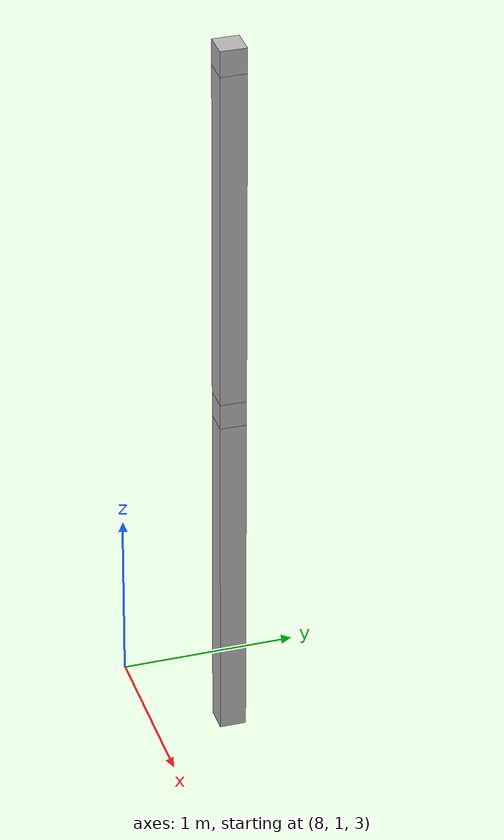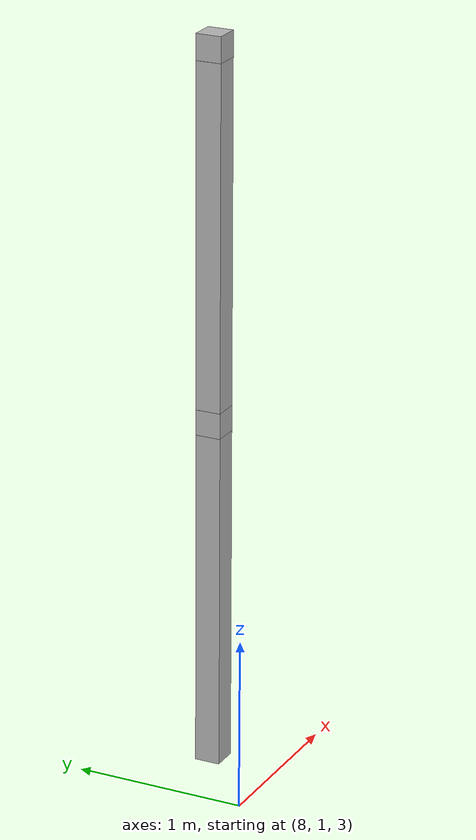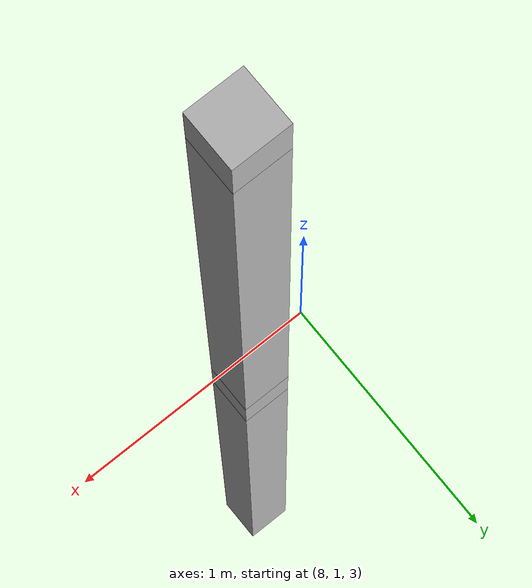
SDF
<sdf version="1.7">
 <world name="default">
  <model name="orthogonal_747_2.000.15_TS">
   <static>1</static>
   <link name="u_link_3_3_7">
    <inertial>
     <mass>1</mass>
     <inertia>
      <ixx>0.166667</ixx>
      <ixy>0</ixy>
      <ixz>0</ixz>
      <iyy>0.166667</iyy>
      <iyz>0</iyz>
      <izz>0.166667</izz>
     </inertia>
    </inertial>
    <pose>15.05 6.45 7.525 0 -0 0</pose>
    <visual name="visual_0">
     <laser_retro>3284</laser_retro>
     <geometry><box><size>0.15 1e-06 0.15</size></box></geometry>
     <material>
      <script><name>Gazebo/Grey</name><uri>file://media/materials/scripts/gazebo.material</uri></script>
      <shader type="pixel"><normal_map>__default__</normal_map></shader>
      <ambient>0.678 0.498 0.659 1</ambient>
      <diffuse>0.7 0.7 0.7 1</diffuse>
      <specular>0.01 0.01 0.01 1</specular>
      <emissive>0 0 0 1</emissive>
     </material>
     <pose>0 -0.075 0 0 -0 0</pose>
     <transparency>1</transparency>
    </visual>
    <visual name="visual_1">
     <laser_retro>3285</laser_retro>
     <geometry><box><size>0.15 1e-06 0.15</size></box></geometry>
     <material>
      <script><name>Gazebo/Grey</name><uri>file://media/materials/scripts/gazebo.material</uri></script>
      <shader type="pixel"><normal_map>__default__</normal_map></shader>
      <ambient>0.447 0.624 0.812 1</ambient>
      <diffuse>0.7 0.7 0.7 1</diffuse>
      <specular>0.01 0.01 0.01 1</specular>
      <emissive>0 0 0 1</emissive>
     </material>
     <pose>0 0.075 0 0 -0 0</pose>
     <transparency>1</transparency>
    </visual>
    <visual name="visual_2">
     <laser_retro>3286</laser_retro>
     <geometry><box><size>0.15 0.15 1e-06</size></box></geometry>
     <material>
      <script><name>Gazebo/Grey</name><uri>file://media/materials/scripts/gazebo.material</uri></script>
      <shader type="pixel"><normal_map>__default__</normal_map></shader>
      <ambient>0.988 0.686 0.243 1</ambient>
      <diffuse>0.7 0.7 0.7 1</diffuse>
      <specular>0.01 0.01 0.01 1</specular>
      <emissive>0 0 0 1</emissive>
     </material>
     <pose>0 0 -0.075 0 -0 0</pose>
     <transparency>1</transparency>
    </visual>
    <visual name="visual_3">
     <laser_retro>3287</laser_retro>
     <geometry><box><size>1e-06 0.15 0.15</size></box></geometry>
     <material>
      <script><name>Gazebo/Grey</name><uri>file://media/materials/scripts/gazebo.material</uri></script>
      <shader type="pixel"><normal_map>__default__</normal_map></shader>
      <ambient>0.988 0.914 0.31 1</ambient>
      <diffuse>0.7 0.7 0.7 1</diffuse>
      <specular>0.01 0.01 0.01 1</specular>
      <emissive>0 0 0 1</emissive>
     </material>
     <pose>0.075 0 0 0 -0 0</pose>
     <transparency>1</transparency>
    </visual>
    <visual name="visual_4">
     <laser_retro>3288</laser_retro>
     <geometry><box><size>0.15 0.15 1e-06</size></box></geometry>
     <material>
      <script><name>Gazebo/Grey</name><uri>file://media/materials/scripts/gazebo.material</uri></script>
      <shader type="pixel"><normal_map>__default__</normal_map></shader>
      <ambient>0.937 0.161 0.161 1</ambient>
      <diffuse>0.7 0.7 0.7 1</diffuse>
      <specular>0.01 0.01 0.01 1</specular>
      <emissive>0 0 0 1</emissive>
     </material>
     <pose>0 0 0.075 0 -0 0</pose>
     <transparency>1</transparency>
    </visual>
    <visual name="visual_5">
     <laser_retro>3289</laser_retro>
     <geometry><box><size>1e-06 0.15 0.15</size></box></geometry>
     <material>
      <script><name>Gazebo/Grey</name><uri>file://media/materials/scripts/gazebo.material</uri></script>
      <shader type="pixel"><normal_map>__default__</normal_map></shader>
      <ambient>0.541 0.886 0.204 1</ambient>
      <diffuse>0.7 0.7 0.7 1</diffuse>
      <specular>0.01 0.01 0.01 1</specular>
      <emissive>0 0 0 1</emissive>
     </material>
     <pose>-0.075 0 0 0 -0 0</pose>
     <transparency>1</transparency>
    </visual>
    <visual name="visual_texture">
     <geometry><box><size>0.149985 0.149985 0.149985</size></box></geometry>
     <material>
      <script>
       <uri>model://BASE_MODELS/simple_block_v2_textured/materials/scripts</uri>
       <uri>model://BASE_MODELS/simple_block_v2_textured/materials/textures</uri>
       <name>metal</name>
      </script>
     </material>
     <laser_retro>3290</laser_retro>
    </visual>
    <collision name="collision">
     <geometry><box><size>0.15 0.15 0.15</size></box></geometry>
     <surface>
      <friction>
       <ode><mu>1</mu><mu2>1</mu2><fdir1>0 0 0</fdir1><slip1>0</slip1><slip2>0</slip2></ode>
       <torsional>
        <coefficient>1</coefficient>
        <patch_radius>0</patch_radius>
        <surface_radius>0</surface_radius>
        <use_patch_radius>1</use_patch_radius>
        <ode><slip>0</slip></ode>
       </torsional>
      </friction>
      <bounce><restitution_coefficient>0</restitution_coefficient><threshold>1e+06</threshold></bounce>
      <contact>
       <collide_without_contact>0</collide_without_contact>
       <collide_without_contact_bitmask>1</collide_without_contact_bitmask>
       <collide_bitmask>1</collide_bitmask>
       <ode>
        <soft_cfm>0</soft_cfm>
        <soft_erp>0.2</soft_erp>
        <kp>1e+13</kp>
        <kd>1</kd>
        <max_vel>0.01</max_vel>
        <min_depth>0</min_depth>
       </ode>
       <bullet>
        <split_impulse>1</split_impulse>
        <split_impulse_penetration_threshold>-0.01</split_impulse_penetration_threshold>
        <soft_cfm>0</soft_cfm>
        <soft_erp>0.2</soft_erp>
        <kp>1e+13</kp>
        <kd>1</kd>
       </bullet>
      </contact>
     </surface>
    </collision>
   </link>
   <link name="z_link_3_3_7">
    <inertial>
     <mass>1</mass>
     <inertia>
      <ixx>0.166667</ixx>
      <ixy>0</ixy>
      <ixz>0</ixz>
      <iyy>0.166667</iyy>
      <iyz>0</iyz>
      <izz>0.166667</izz>
     </inertia>
    </inertial>
    <pose>15.05 6.45 6.45 0 -0 0</pose>
    <visual name="visual_0">
     <laser_retro>3291</laser_retro>
     <geometry><box><size>0.15 1e-06 2</size></box></geometry>
     <material>
      <script><name>Gazebo/Grey</name><uri>file://media/materials/scripts/gazebo.material</uri></script>
      <shader type="pixel"><normal_map>__default__</normal_map></shader>
      <ambient>0.678 0.498 0.659 1</ambient>
      <diffuse>0.7 0.7 0.7 1</diffuse>
      <specular>0.01 0.01 0.01 1</specular>
      <emissive>0 0 0 1</emissive>
     </material>
     <pose>0 -0.075 0 0 -0 0</pose>
     <transparency>1</transparency>
    </visual>
    <visual name="visual_1">
     <laser_retro>3292</laser_retro>
     <geometry><box><size>0.15 1e-06 2</size></box></geometry>
     <material>
      <script><name>Gazebo/Grey</name><uri>file://media/materials/scripts/gazebo.material</uri></script>
      <shader type="pixel"><normal_map>__default__</normal_map></shader>
      <ambient>0.447 0.624 0.812 1</ambient>
      <diffuse>0.7 0.7 0.7 1</diffuse>
      <specular>0.01 0.01 0.01 1</specular>
      <emissive>0 0 0 1</emissive>
     </material>
     <pose>0 0.075 0 0 -0 0</pose>
     <transparency>1</transparency>
    </visual>
    <visual name="visual_2">
     <laser_retro>3293</laser_retro>
     <geometry><box><size>0.15 0.15 1e-06</size></box></geometry>
     <material>
      <script><name>Gazebo/Grey</name><uri>file://media/materials/scripts/gazebo.material</uri></script>
      <shader type="pixel"><normal_map>__default__</normal_map></shader>
      <ambient>0.988 0.686 0.243 1</ambient>
      <diffuse>0.7 0.7 0.7 1</diffuse>
      <specular>0.01 0.01 0.01 1</specular>
      <emissive>0 0 0 1</emissive>
     </material>
     <pose>0 0 -1 0 -0 0</pose>
     <transparency>1</transparency>
    </visual>
    <visual name="visual_3">
     <laser_retro>3294</laser_retro>
     <geometry><box><size>1e-06 0.15 2</size></box></geometry>
     <material>
      <script><name>Gazebo/Grey</name><uri>file://media/materials/scripts/gazebo.material</uri></script>
      <shader type="pixel"><normal_map>__default__</normal_map></shader>
      <ambient>0.988 0.914 0.31 1</ambient>
      <diffuse>0.7 0.7 0.7 1</diffuse>
      <specular>0.01 0.01 0.01 1</specular>
      <emissive>0 0 0 1</emissive>
     </material>
     <pose>0.075 0 0 0 -0 0</pose>
     <transparency>1</transparency>
    </visual>
    <visual name="visual_4">
     <laser_retro>3295</laser_retro>
     <geometry><box><size>0.15 0.15 1e-06</size></box></geometry>
     <material>
      <script><name>Gazebo/Grey</name><uri>file://media/materials/scripts/gazebo.material</uri></script>
      <shader type="pixel"><normal_map>__default__</normal_map></shader>
      <ambient>0.937 0.161 0.161 1</ambient>
      <diffuse>0.7 0.7 0.7 1</diffuse>
      <specular>0.01 0.01 0.01 1</specular>
      <emissive>0 0 0 1</emissive>
     </material>
     <pose>0 0 1 0 -0 0</pose>
     <transparency>1</transparency>
    </visual>
    <visual name="visual_5">
     <laser_retro>3296</laser_retro>
     <geometry><box><size>1e-06 0.15 2</size></box></geometry>
     <material>
      <script><name>Gazebo/Grey</name><uri>file://media/materials/scripts/gazebo.material</uri></script>
      <shader type="pixel"><normal_map>__default__</normal_map></shader>
      <ambient>0.541 0.886 0.204 1</ambient>
      <diffuse>0.7 0.7 0.7 1</diffuse>
      <specular>0.01 0.01 0.01 1</specular>
      <emissive>0 0 0 1</emissive>
     </material>
     <pose>-0.075 0 0 0 -0 0</pose>
     <transparency>1</transparency>
    </visual>
    <visual name="visual_texture">
     <geometry><box><size>0.149985 0.149985 1.9998</size></box></geometry>
     <material>
      <script>
       <uri>model://BASE_MODELS/simple_block_v2_textured/materials/scripts</uri>
       <uri>model://BASE_MODELS/simple_block_v2_textured/materials/textures</uri>
       <name>metal</name>
      </script>
     </material>
     <laser_retro>3297</laser_retro>
    </visual>
    <collision name="collision">
     <geometry><box><size>0.15 0.15 2</size></box></geometry>
     <surface>
      <friction>
       <ode><mu>1</mu><mu2>1</mu2><fdir1>0 0 0</fdir1><slip1>0</slip1><slip2>0</slip2></ode>
       <torsional>
        <coefficient>1</coefficient>
        <patch_radius>0</patch_radius>
        <surface_radius>0</surface_radius>
        <use_patch_radius>1</use_patch_radius>
        <ode><slip>0</slip></ode>
       </torsional>
      </friction>
      <bounce><restitution_coefficient>0</restitution_coefficient><threshold>1e+06</threshold></bounce>
      <contact>
       <collide_without_contact>0</collide_without_contact>
       <collide_without_contact_bitmask>1</collide_without_contact_bitmask>
       <collide_bitmask>1</collide_bitmask>
       <ode>
        <soft_cfm>0</soft_cfm>
        <soft_erp>0.2</soft_erp>
        <kp>1e+13</kp>
        <kd>1</kd>
        <max_vel>0.01</max_vel>
        <min_depth>0</min_depth>
       </ode>
       <bullet>
        <split_impulse>1</split_impulse>
        <split_impulse_penetration_threshold>-0.01</split_impulse_penetration_threshold>
        <soft_cfm>0</soft_cfm>
        <soft_erp>0.2</soft_erp>
        <kp>1e+13</kp>
        <kd>1</kd>
       </bullet>
      </contact>
     </surface>
    </collision>
   </link>
   <link name="u_link_4_3_7">
    <inertial>
     <mass>1</mass>
     <inertia>
      <ixx>0.166667</ixx>
      <ixy>0</ixy>
      <ixz>0</ixz>
      <iyy>0.166667</iyy>
      <iyz>0</iyz>
      <izz>0.166667</izz>
     </inertia>
    </inertial>
    <pose>15.05 6.45 9.675 0 -0 0</pose>
    <visual name="visual_0">
     <laser_retro>4187</laser_retro>
     <geometry><box><size>0.15 1e-06 0.15</size></box></geometry>
     <material>
      <script><name>Gazebo/Grey</name><uri>file://media/materials/scripts/gazebo.material</uri></script>
      <shader type="pixel"><normal_map>__default__</normal_map></shader>
      <ambient>0.678 0.498 0.659 1</ambient>
      <diffuse>0.7 0.7 0.7 1</diffuse>
      <specular>0.01 0.01 0.01 1</specular>
      <emissive>0 0 0 1</emissive>
     </material>
     <pose>0 -0.075 0 0 -0 0</pose>
     <transparency>1</transparency>
    </visual>
    <visual name="visual_1">
     <laser_retro>4188</laser_retro>
     <geometry><box><size>0.15 1e-06 0.15</size></box></geometry>
     <material>
      <script><name>Gazebo/Grey</name><uri>file://media/materials/scripts/gazebo.material</uri></script>
      <shader type="pixel"><normal_map>__default__</normal_map></shader>
      <ambient>0.447 0.624 0.812 1</ambient>
      <diffuse>0.7 0.7 0.7 1</diffuse>
      <specular>0.01 0.01 0.01 1</specular>
      <emissive>0 0 0 1</emissive>
     </material>
     <pose>0 0.075 0 0 -0 0</pose>
     <transparency>1</transparency>
    </visual>
    <visual name="visual_2">
     <laser_retro>4189</laser_retro>
     <geometry><box><size>0.15 0.15 1e-06</size></box></geometry>
     <material>
      <script><name>Gazebo/Grey</name><uri>file://media/materials/scripts/gazebo.material</uri></script>
      <shader type="pixel"><normal_map>__default__</normal_map></shader>
      <ambient>0.988 0.686 0.243 1</ambient>
      <diffuse>0.7 0.7 0.7 1</diffuse>
      <specular>0.01 0.01 0.01 1</specular>
      <emissive>0 0 0 1</emissive>
     </material>
     <pose>0 0 -0.075 0 -0 0</pose>
     <transparency>1</transparency>
    </visual>
    <visual name="visual_3">
     <laser_retro>4190</laser_retro>
     <geometry><box><size>1e-06 0.15 0.15</size></box></geometry>
     <material>
      <script><name>Gazebo/Grey</name><uri>file://media/materials/scripts/gazebo.material</uri></script>
      <shader type="pixel"><normal_map>__default__</normal_map></shader>
      <ambient>0.988 0.914 0.31 1</ambient>
      <diffuse>0.7 0.7 0.7 1</diffuse>
      <specular>0.01 0.01 0.01 1</specular>
      <emissive>0 0 0 1</emissive>
     </material>
     <pose>0.075 0 0 0 -0 0</pose>
     <transparency>1</transparency>
    </visual>
    <visual name="visual_4">
     <laser_retro>4191</laser_retro>
     <geometry><box><size>0.15 0.15 1e-06</size></box></geometry>
     <material>
      <script><name>Gazebo/Grey</name><uri>file://media/materials/scripts/gazebo.material</uri></script>
      <shader type="pixel"><normal_map>__default__</normal_map></shader>
      <ambient>0.937 0.161 0.161 1</ambient>
      <diffuse>0.7 0.7 0.7 1</diffuse>
      <specular>0.01 0.01 0.01 1</specular>
      <emissive>0 0 0 1</emissive>
     </material>
     <pose>0 0 0.075 0 -0 0</pose>
     <transparency>1</transparency>
    </visual>
    <visual name="visual_5">
     <laser_retro>4192</laser_retro>
     <geometry><box><size>1e-06 0.15 0.15</size></box></geometry>
     <material>
      <script><name>Gazebo/Grey</name><uri>file://media/materials/scripts/gazebo.material</uri></script>
      <shader type="pixel"><normal_map>__default__</normal_map></shader>
      <ambient>0.541 0.886 0.204 1</ambient>
      <diffuse>0.7 0.7 0.7 1</diffuse>
      <specular>0.01 0.01 0.01 1</specular>
      <emissive>0 0 0 1</emissive>
     </material>
     <pose>-0.075 0 0 0 -0 0</pose>
     <transparency>1</transparency>
    </visual>
    <visual name="visual_texture">
     <geometry><box><size>0.149985 0.149985 0.149985</size></box></geometry>
     <material>
      <script>
       <uri>model://BASE_MODELS/simple_block_v2_textured/materials/scripts</uri>
       <uri>model://BASE_MODELS/simple_block_v2_textured/materials/textures</uri>
       <name>metal</name>
      </script>
     </material>
     <laser_retro>4193</laser_retro>
    </visual>
    <collision name="collision">
     <geometry><box><size>0.15 0.15 0.15</size></box></geometry>
     <surface>
      <friction>
       <ode><mu>1</mu><mu2>1</mu2><fdir1>0 0 0</fdir1><slip1>0</slip1><slip2>0</slip2></ode>
       <torsional>
        <coefficient>1</coefficient>
        <patch_radius>0</patch_radius>
        <surface_radius>0</surface_radius>
        <use_patch_radius>1</use_patch_radius>
        <ode><slip>0</slip></ode>
       </torsional>
      </friction>
      <bounce><restitution_coefficient>0</restitution_coefficient><threshold>1e+06</threshold></bounce>
      <contact>
       <collide_without_contact>0</collide_without_contact>
       <collide_without_contact_bitmask>1</collide_without_contact_bitmask>
       <collide_bitmask>1</collide_bitmask>
       <ode>
        <soft_cfm>0</soft_cfm>
        <soft_erp>0.2</soft_erp>
        <kp>1e+13</kp>
        <kd>1</kd>
        <max_vel>0.01</max_vel>
        <min_depth>0</min_depth>
       </ode>
       <bullet>
        <split_impulse>1</split_impulse>
        <split_impulse_penetration_threshold>-0.01</split_impulse_penetration_threshold>
        <soft_cfm>0</soft_cfm>
        <soft_erp>0.2</soft_erp>
        <kp>1e+13</kp>
        <kd>1</kd>
       </bullet>
      </contact>
     </surface>
    </collision>
   </link>
   <link name="z_link_4_3_7">
    <inertial>
     <mass>1</mass>
     <inertia>
      <ixx>0.166667</ixx>
      <ixy>0</ixy>
      <ixz>0</ixz>
      <iyy>0.166667</iyy>
      <iyz>0</iyz>
      <izz>0.166667</izz>
     </inertia>
    </inertial>
    <pose>15.05 6.45 8.6 0 -0 0</pose>
    <visual name="visual_0">
     <laser_retro>4194</laser_retro>
     <geometry><box><size>0.15 1e-06 2</size></box></geometry>
     <material>
      <script><name>Gazebo/Grey</name><uri>file://media/materials/scripts/gazebo.material</uri></script>
      <shader type="pixel"><normal_map>__default__</normal_map></shader>
      <ambient>0.678 0.498 0.659 1</ambient>
      <diffuse>0.7 0.7 0.7 1</diffuse>
      <specular>0.01 0.01 0.01 1</specular>
      <emissive>0 0 0 1</emissive>
     </material>
     <pose>0 -0.075 0 0 -0 0</pose>
     <transparency>1</transparency>
    </visual>
    <visual name="visual_1">
     <laser_retro>4195</laser_retro>
     <geometry><box><size>0.15 1e-06 2</size></box></geometry>
     <material>
      <script><name>Gazebo/Grey</name><uri>file://media/materials/scripts/gazebo.material</uri></script>
      <shader type="pixel"><normal_map>__default__</normal_map></shader>
      <ambient>0.447 0.624 0.812 1</ambient>
      <diffuse>0.7 0.7 0.7 1</diffuse>
      <specular>0.01 0.01 0.01 1</specular>
      <emissive>0 0 0 1</emissive>
     </material>
     <pose>0 0.075 0 0 -0 0</pose>
     <transparency>1</transparency>
    </visual>
    <visual name="visual_2">
     <laser_retro>4196</laser_retro>
     <geometry><box><size>0.15 0.15 1e-06</size></box></geometry>
     <material>
      <script><name>Gazebo/Grey</name><uri>file://media/materials/scripts/gazebo.material</uri></script>
      <shader type="pixel"><normal_map>__default__</normal_map></shader>
      <ambient>0.988 0.686 0.243 1</ambient>
      <diffuse>0.7 0.7 0.7 1</diffuse>
      <specular>0.01 0.01 0.01 1</specular>
      <emissive>0 0 0 1</emissive>
     </material>
     <pose>0 0 -1 0 -0 0</pose>
     <transparency>1</transparency>
    </visual>
    <visual name="visual_3">
     <laser_retro>4197</laser_retro>
     <geometry><box><size>1e-06 0.15 2</size></box></geometry>
     <material>
      <script><name>Gazebo/Grey</name><uri>file://media/materials/scripts/gazebo.material</uri></script>
      <shader type="pixel"><normal_map>__default__</normal_map></shader>
      <ambient>0.988 0.914 0.31 1</ambient>
      <diffuse>0.7 0.7 0.7 1</diffuse>
      <specular>0.01 0.01 0.01 1</specular>
      <emissive>0 0 0 1</emissive>
     </material>
     <pose>0.075 0 0 0 -0 0</pose>
     <transparency>1</transparency>
    </visual>
    <visual name="visual_4">
     <laser_retro>4198</laser_retro>
     <geometry><box><size>0.15 0.15 1e-06</size></box></geometry>
     <material>
      <script><name>Gazebo/Grey</name><uri>file://media/materials/scripts/gazebo.material</uri></script>
      <shader type="pixel"><normal_map>__default__</normal_map></shader>
      <ambient>0.937 0.161 0.161 1</ambient>
      <diffuse>0.7 0.7 0.7 1</diffuse>
      <specular>0.01 0.01 0.01 1</specular>
      <emissive>0 0 0 1</emissive>
     </material>
     <pose>0 0 1 0 -0 0</pose>
     <transparency>1</transparency>
    </visual>
    <visual name="visual_5">
     <laser_retro>4199</laser_retro>
     <geometry><box><size>1e-06 0.15 2</size></box></geometry>
     <material>
      <script><name>Gazebo/Grey</name><uri>file://media/materials/scripts/gazebo.material</uri></script>
      <shader type="pixel"><normal_map>__default__</normal_map></shader>
      <ambient>0.541 0.886 0.204 1</ambient>
      <diffuse>0.7 0.7 0.7 1</diffuse>
      <specular>0.01 0.01 0.01 1</specular>
      <emissive>0 0 0 1</emissive>
     </material>
     <pose>-0.075 0 0 0 -0 0</pose>
     <transparency>1</transparency>
    </visual>
    <visual name="visual_texture">
     <geometry><box><size>0.149985 0.149985 1.9998</size></box></geometry>
     <material>
      <script>
       <uri>model://BASE_MODELS/simple_block_v2_textured/materials/scripts</uri>
       <uri>model://BASE_MODELS/simple_block_v2_textured/materials/textures</uri>
       <name>metal</name>
      </script>
     </material>
     <laser_retro>4200</laser_retro>
    </visual>
    <collision name="collision">
     <geometry><box><size>0.15 0.15 2</size></box></geometry>
     <surface>
      <friction>
       <ode><mu>1</mu><mu2>1</mu2><fdir1>0 0 0</fdir1><slip1>0</slip1><slip2>0</slip2></ode>
       <torsional>
        <coefficient>1</coefficient>
        <patch_radius>0</patch_radius>
        <surface_radius>0</surface_radius>
        <use_patch_radius>1</use_patch_radius>
        <ode><slip>0</slip></ode>
       </torsional>
      </friction>
      <bounce><restitution_coefficient>0</restitution_coefficient><threshold>1e+06</threshold></bounce>
      <contact>
       <collide_without_contact>0</collide_without_contact>
       <collide_without_contact_bitmask>1</collide_without_contact_bitmask>
       <collide_bitmask>1</collide_bitmask>
       <ode>
        <soft_cfm>0</soft_cfm>
        <soft_erp>0.2</soft_erp>
        <kp>1e+13</kp>
        <kd>1</kd>
        <max_vel>0.01</max_vel>
        <min_depth>0</min_depth>
       </ode>
       <bullet>
        <split_impulse>1</split_impulse>
        <split_impulse_penetration_threshold>-0.01</split_impulse_penetration_threshold>
        <soft_cfm>0</soft_cfm>
        <soft_erp>0.2</soft_erp>
        <kp>1e+13</kp>
        <kd>1</kd>
       </bullet>
      </contact>
     </surface>
    </collision>
   </link>
   <pose>-6.47624 -5 -2.5 0 -0 0</pose>
  </model>
 </world>
</sdf>
